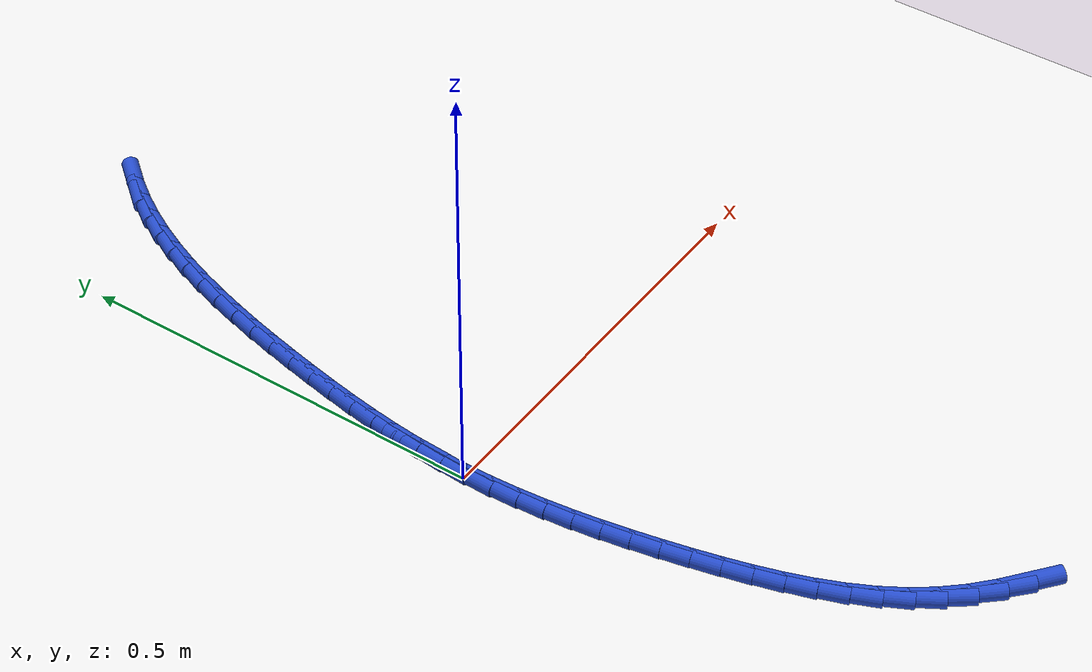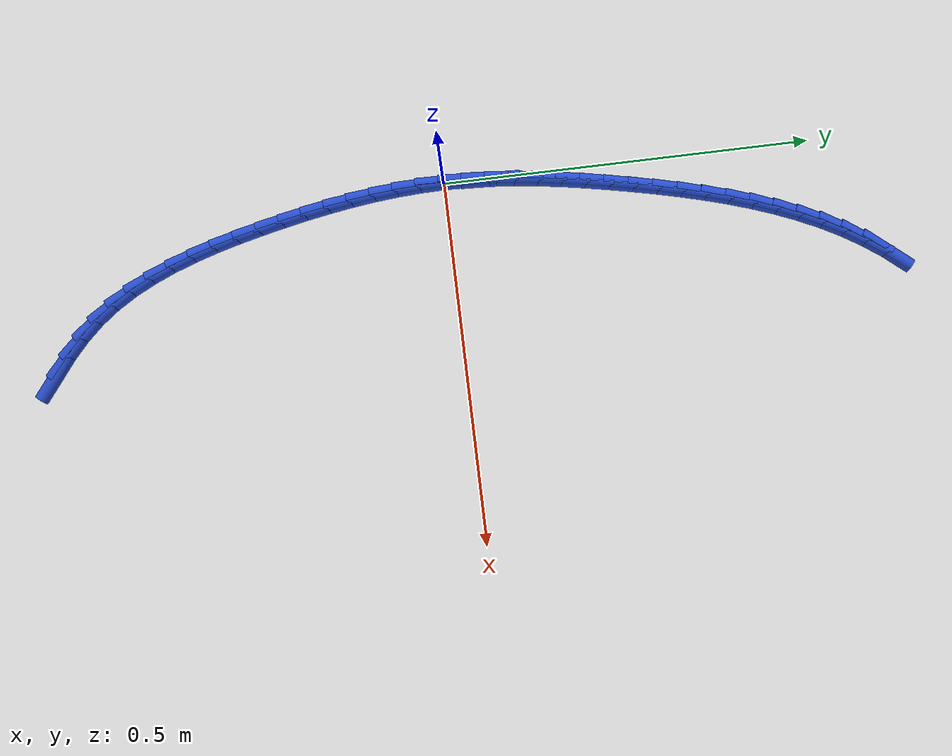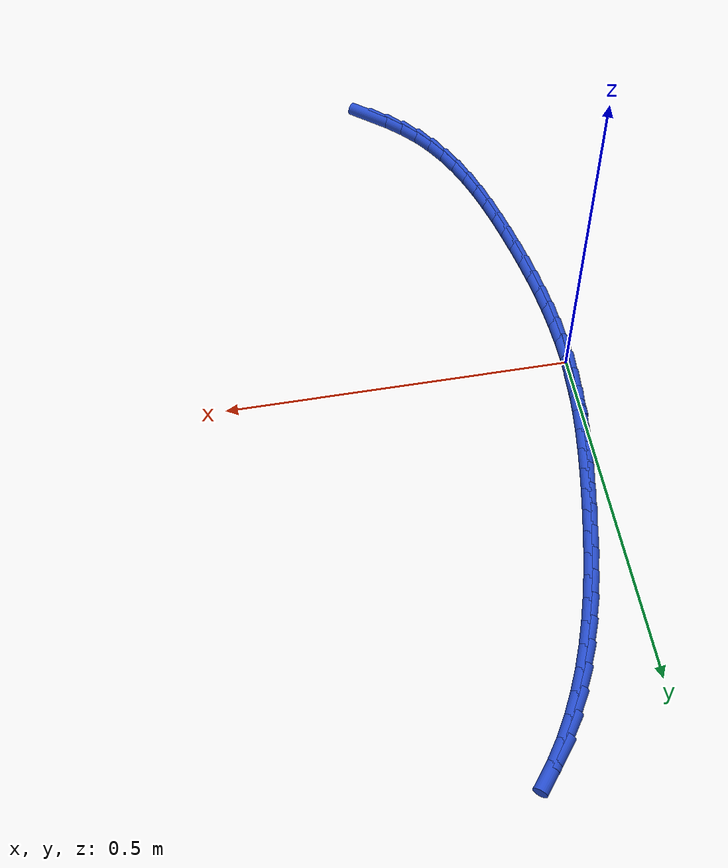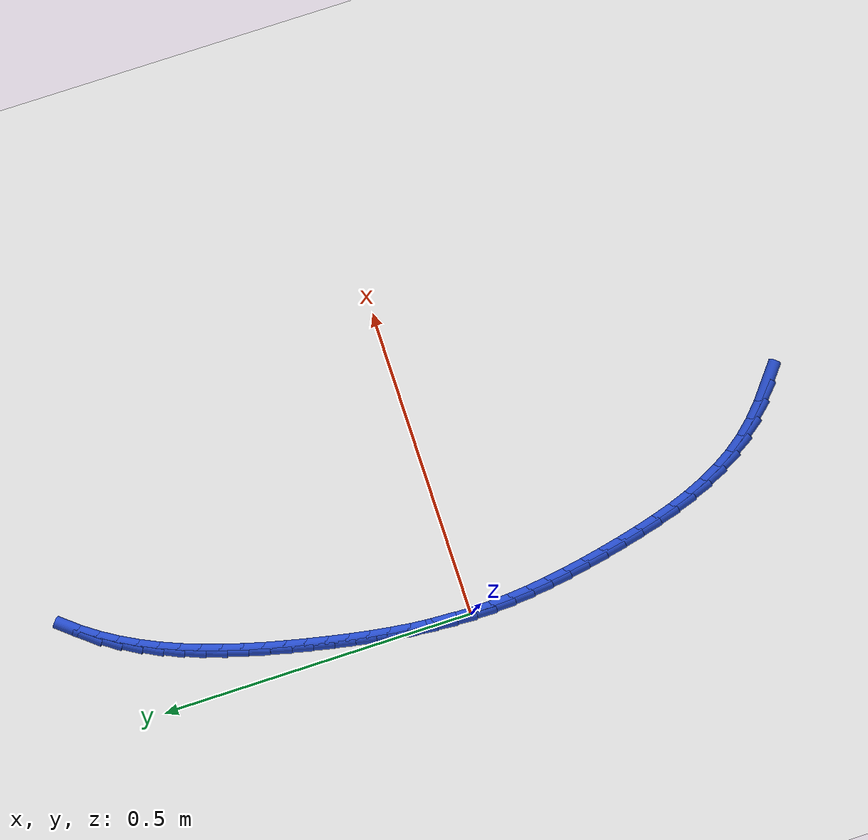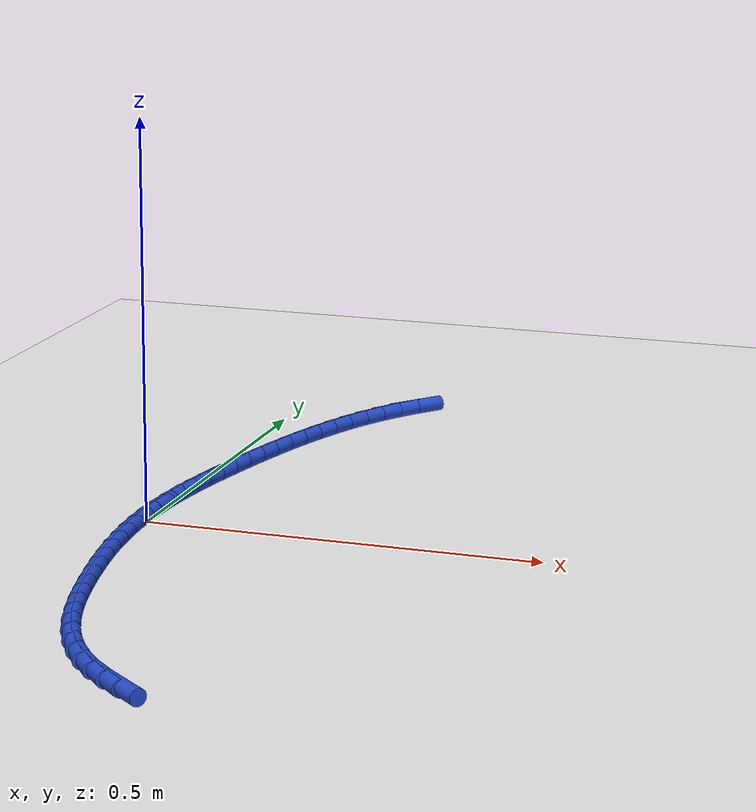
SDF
<sdf version="1.6">
 <world name="default">
  <model name="ground_plane">
   <static>1</static>
   <link name="link">
    <collision name="collision">
     <geometry><plane><normal>0 0 1</normal><size>100 100</size></plane></geometry>
     <surface><friction><ode><mu>100</mu><mu2>50</mu2></ode></friction></surface>
    </collision>
    <visual name="visual">
     <cast_shadows>0</cast_shadows>
     <geometry><plane><normal>0 0 1</normal><size>100 100</size></plane></geometry>
     <material>
      <script><uri>file://media/materials/scripts/gazebo.material</uri><name>Gazebo/WhiteGlow</name></script>
     </material>
    </visual>
   </link>
  </model>
  <model name="line">
   <link name="link_0">
    <pose>5.204170427930421e-18 -2.7755575615628914e-17 0.01 0 1.57 1.5479271069399798</pose>
    <collision name="collision">
     <geometry><cylinder><radius>0.01</radius><length>0.08</length></cylinder></geometry>
    </collision>
    <visual name="visual">
     <material>
      <script><name>Gazebo/Blue</name><uri>file://media/materials/scripts/gazebo.material</uri></script>
     </material>
     <geometry><cylinder><radius>0.01</radius><length>0.08</length></cylinder></geometry>
    </visual>
   </link>
   <link name="link_1">
    <pose>0.0007225194036164939 0.03158802286646798 0.01 0 1.57 1.5106949477596123</pose>
    <collision name="collision">
     <geometry><cylinder><radius>0.01</radius><length>0.08</length></cylinder></geometry>
    </collision>
    <visual name="visual">
     <material>
      <script><name>Gazebo/Blue</name><uri>file://media/materials/scripts/gazebo.material</uri></script>
     </material>
     <geometry><cylinder><radius>0.01</radius><length>0.08</length></cylinder></geometry>
    </visual>
   </link>
   <link name="link_2">
    <pose>0.002623943305665586 0.0631868639454135 0.01 0 1.57 1.4771769836632676</pose>
    <collision name="collision">
     <geometry><cylinder><radius>0.01</radius><length>0.08</length></cylinder></geometry>
    </collision>
    <visual name="visual">
     <material>
      <script><name>Gazebo/Blue</name><uri>file://media/materials/scripts/gazebo.material</uri></script>
     </material>
     <geometry><cylinder><radius>0.01</radius><length>0.08</length></cylinder></geometry>
    </visual>
   </link>
   <link name="link_3">
    <pose>0.005594196453344195 0.09482103588885157 0.01 0 1.57 1.4474587203755238</pose>
    <collision name="collision">
     <geometry><cylinder><radius>0.01</radius><length>0.08</length></cylinder></geometry>
    </collision>
    <visual name="visual">
     <material>
      <script><name>Gazebo/Blue</name><uri>file://media/materials/scripts/gazebo.material</uri></script>
     </material>
     <geometry><cylinder><radius>0.01</radius><length>0.08</length></cylinder></geometry>
    </visual>
   </link>
   <link name="link_4">
    <pose>0.00952320359384925 0.12651505134879745 0.01 0 1.57 1.421570015818683</pose>
    <collision name="collision">
     <geometry><cylinder><radius>0.01</radius><length>0.08</length></cylinder></geometry>
    </collision>
    <visual name="visual">
     <material>
      <script><name>Gazebo/Blue</name><uri>file://media/materials/scripts/gazebo.material</uri></script>
     </material>
     <geometry><cylinder><radius>0.01</radius><length>0.08</length></cylinder></geometry>
    </visual>
   </link>
   <link name="link_5">
    <pose>0.014300889474377656 0.15829342297726606 0.01 0 1.57 1.3994980753813784</pose>
    <collision name="collision">
     <geometry><cylinder><radius>0.01</radius><length>0.08</length></cylinder></geometry>
    </collision>
    <visual name="visual">
     <material>
      <script><name>Gazebo/Blue</name><uri>file://media/materials/scripts/gazebo.material</uri></script>
     </material>
     <geometry><cylinder><radius>0.01</radius><length>0.08</length></cylinder></geometry>
    </visual>
   </link>
   <link name="link_6">
    <pose>0.019817178842126332 0.19018066342627266 0.01 0 1.57 1.381199406289561</pose>
    <collision name="collision">
     <geometry><cylinder><radius>0.01</radius><length>0.08</length></cylinder></geometry>
    </collision>
    <visual name="visual">
     <material>
      <script><name>Gazebo/Blue</name><uri>file://media/materials/scripts/gazebo.material</uri></script>
     </material>
     <geometry><cylinder><radius>0.01</radius><length>0.08</length></cylinder></geometry>
    </visual>
   </link>
   <link name="link_7">
    <pose>0.025961996444292208 0.22220128534783232 0.01 0 1.57 1.3666028297357178</pose>
    <collision name="collision">
     <geometry><cylinder><radius>0.01</radius><length>0.08</length></cylinder></geometry>
    </collision>
    <visual name="visual">
     <material>
      <script><name>Gazebo/Blue</name><uri>file://media/materials/scripts/gazebo.material</uri></script>
     </material>
     <geometry><cylinder><radius>0.01</radius><length>0.08</length></cylinder></geometry>
    </visual>
   </link>
   <link name="link_8">
    <pose>0.03262547887403815 0.2543796495197848 0.01 0 1.57 1.3535168513125615</pose>
    <collision name="collision">
     <geometry><cylinder><radius>0.01</radius><length>0.08</length></cylinder></geometry>
    </collision>
    <visual name="visual">
     <material>
      <script><name>Gazebo/Blue</name><uri>file://media/materials/scripts/gazebo.material</uri></script>
     </material>
     <geometry><cylinder><radius>0.01</radius><length>0.08</length></cylinder></geometry>
    </visual>
   </link>
   <link name="link_9">
    <pose>0.03975971839070129 0.28669570017577833 0.01 0 1.57 1.3368271544211339</pose>
    <collision name="collision">
     <geometry><cylinder><radius>0.01</radius><length>0.08</length></cylinder></geometry>
    </collision>
    <visual name="visual">
     <material>
      <script><name>Gazebo/Blue</name><uri>file://media/materials/scripts/gazebo.material</uri></script>
     </material>
     <geometry><cylinder><radius>0.01</radius><length>0.08</length></cylinder></geometry>
    </visual>
   </link>
   <link name="link_10">
    <pose>0.047464528884889064 0.3190234786552057 0.01 0 1.57 1.3156942760936174</pose>
    <collision name="collision">
     <geometry><cylinder><radius>0.01</radius><length>0.08</length></cylinder></geometry>
    </collision>
    <visual name="visual">
     <material>
      <script><name>Gazebo/Blue</name><uri>file://media/materials/scripts/gazebo.material</uri></script>
     </material>
     <geometry><cylinder><radius>0.01</radius><length>0.08</length></cylinder></geometry>
    </visual>
   </link>
   <link name="link_11">
    <pose>0.055861270674267806 0.35122157948058697 0.01 0 1.57 1.2899494429673124</pose>
    <collision name="collision">
     <geometry><cylinder><radius>0.01</radius><length>0.08</length></cylinder></geometry>
    </collision>
    <visual name="visual">
     <material>
      <script><name>Gazebo/Blue</name><uri>file://media/materials/scripts/gazebo.material</uri></script>
     </material>
     <geometry><cylinder><radius>0.01</radius><length>0.08</length></cylinder></geometry>
    </visual>
   </link>
   <link name="link_12">
    <pose>0.06507130407650391 0.38314859717444216 0.01 0 1.57 1.2593662667407546</pose>
    <collision name="collision">
     <geometry><cylinder><radius>0.01</radius><length>0.08</length></cylinder></geometry>
    </collision>
    <visual name="visual">
     <material>
      <script><name>Gazebo/Blue</name><uri>file://media/materials/scripts/gazebo.material</uri></script>
     </material>
     <geometry><cylinder><radius>0.01</radius><length>0.08</length></cylinder></geometry>
    </visual>
   </link>
   <link name="link_13">
    <pose>0.07521598940926373 0.41466312625929125 0.01 0 1.57 1.2236727436091208</pose>
    <collision name="collision">
     <geometry><cylinder><radius>0.01</radius><length>0.08</length></cylinder></geometry>
    </collision>
    <visual name="visual">
     <material>
      <script><name>Gazebo/Blue</name><uri>file://media/materials/scripts/gazebo.material</uri></script>
     </material>
     <geometry><cylinder><radius>0.01</radius><length>0.08</length></cylinder></geometry>
    </visual>
   </link>
   <link name="link_14">
    <pose>0.08641668699021357 0.4456237612576542 0.01 0 1.57 1.1825682829040605</pose>
    <collision name="collision">
     <geometry><cylinder><radius>0.01</radius><length>0.08</length></cylinder></geometry>
    </collision>
    <visual name="visual">
     <material>
      <script><name>Gazebo/Blue</name><uri>file://media/materials/scripts/gazebo.material</uri></script>
     </material>
     <geometry><cylinder><radius>0.01</radius><length>0.08</length></cylinder></geometry>
    </visual>
   </link>
   <link name="link_15">
    <pose>0.09879475713701985 0.47588909669205104 0.01 0 1.57 1.1357485016548954</pose>
    <collision name="collision">
     <geometry><cylinder><radius>0.01</radius><length>0.08</length></cylinder></geometry>
    </collision>
    <visual name="visual">
     <material>
      <script><name>Gazebo/Blue</name><uri>file://media/materials/scripts/gazebo.material</uri></script>
     </material>
     <geometry><cylinder><radius>0.01</radius><length>0.08</length></cylinder></geometry>
    </visual>
   </link>
   <link name="link_16">
    <pose>0.11247156016734888 0.5053177270850017 0.01 0 1.57 1.0829406344017214</pose>
    <collision name="collision">
     <geometry><cylinder><radius>0.01</radius><length>0.08</length></cylinder></geometry>
    </collision>
    <visual name="visual">
     <material>
      <script><name>Gazebo/Blue</name><uri>file://media/materials/scripts/gazebo.material</uri></script>
     </material>
     <geometry><cylinder><radius>0.01</radius><length>0.08</length></cylinder></geometry>
    </visual>
   </link>
   <link name="link_17">
    <pose>0.12756845639886707 0.5337682469590264 0.01 0 1.57 1.0239517840047918</pose>
    <collision name="collision">
     <geometry><cylinder><radius>0.01</radius><length>0.08</length></cylinder></geometry>
    </collision>
    <visual name="visual">
     <material>
      <script><name>Gazebo/Blue</name><uri>file://media/materials/scripts/gazebo.material</uri></script>
     </material>
     <geometry><cylinder><radius>0.01</radius><length>0.08</length></cylinder></geometry>
    </visual>
   </link>
   <link name="link_18">
    <pose>0.14420680614924075 0.5610992508366448 0.01 0 1.57 0.9587302216881606</pose>
    <collision name="collision">
     <geometry><cylinder><radius>0.01</radius><length>0.08</length></cylinder></geometry>
    </collision>
    <visual name="visual">
     <material>
      <script><name>Gazebo/Blue</name><uri>file://media/materials/scripts/gazebo.material</uri></script>
     </material>
     <geometry><cylinder><radius>0.01</radius><length>0.08</length></cylinder></geometry>
    </visual>
   </link>
   <link name="link_19">
    <pose>0.16250796973613624 0.5871693332403771 0.01 0 1.57 0.8874358720476883</pose>
    <collision name="collision">
     <geometry><cylinder><radius>0.01</radius><length>0.08</length></cylinder></geometry>
    </collision>
    <visual name="visual">
     <material>
      <script><name>Gazebo/Blue</name><uri>file://media/materials/scripts/gazebo.material</uri></script>
     </material>
     <geometry><cylinder><radius>0.01</radius><length>0.08</length></cylinder></geometry>
    </visual>
   </link>
   <link name="link_231">
    <pose>0.19835142039642006 -0.5540729872547265 0.01 0 1.57 -0.6741181508095503</pose>
    <collision name="collision">
     <geometry><cylinder><radius>0.01</radius><length>0.08</length></cylinder></geometry>
    </collision>
    <visual name="visual">
     <material>
      <script><name>Gazebo/Blue</name><uri>file://media/materials/scripts/gazebo.material</uri></script>
     </material>
     <geometry><cylinder><radius>0.01</radius><length>0.08</length></cylinder></geometry>
    </visual>
   </link>
   <link name="link_232">
    <pose>0.17382950100933658 -0.5344804854226813 0.01 0 1.57 -0.7506604338923394</pose>
    <collision name="collision">
     <geometry><cylinder><radius>0.01</radius><length>0.08</length></cylinder></geometry>
    </collision>
    <visual name="visual">
     <material>
      <script><name>Gazebo/Blue</name><uri>file://media/materials/scripts/gazebo.material</uri></script>
     </material>
     <geometry><cylinder><radius>0.01</radius><length>0.08</length></cylinder></geometry>
    </visual>
   </link>
   <link name="link_233">
    <pose>0.15111587440450996 -0.5132925143661575 0.01 0 1.57 -0.8382189698502316</pose>
    <collision name="collision">
     <geometry><cylinder><radius>0.01</radius><length>0.08</length></cylinder></geometry>
    </collision>
    <visual name="visual">
     <material>
      <script><name>Gazebo/Blue</name><uri>file://media/materials/scripts/gazebo.material</uri></script>
     </material>
     <geometry><cylinder><radius>0.01</radius><length>0.08</length></cylinder></geometry>
    </visual>
   </link>
   <link name="link_234">
    <pose>0.13045112902907027 -0.4903207049797418 0.01 0 1.57 -0.9349329709925919</pose>
    <collision name="collision">
     <geometry><cylinder><radius>0.01</radius><length>0.08</length></cylinder></geometry>
    </collision>
    <visual name="visual">
     <material>
      <script><name>Gazebo/Blue</name><uri>file://media/materials/scripts/gazebo.material</uri></script>
     </material>
     <geometry><cylinder><radius>0.01</radius><length>0.08</length></cylinder></geometry>
    </visual>
   </link>
   <link name="link_235">
    <pose>0.11205460172315738 -0.4653976782097044 0.01 0 1.57 -1.0274519976180516</pose>
    <collision name="collision">
     <geometry><cylinder><radius>0.01</radius><length>0.08</length></cylinder></geometry>
    </collision>
    <visual name="visual">
     <material>
      <script><name>Gazebo/Blue</name><uri>file://media/materials/scripts/gazebo.material</uri></script>
     </material>
     <geometry><cylinder><radius>0.01</radius><length>0.08</length></cylinder></geometry>
    </visual>
   </link>
   <link name="link_236">
    <pose>0.09588020957729343 -0.4386182080839647 0.01 0 1.57 -1.107226629692696</pose>
    <collision name="collision">
     <geometry><cylinder><radius>0.01</radius><length>0.08</length></cylinder></geometry>
    </collision>
    <visual name="visual">
     <material>
      <script><name>Gazebo/Blue</name><uri>file://media/materials/scripts/gazebo.material</uri></script>
     </material>
     <geometry><cylinder><radius>0.01</radius><length>0.08</length></cylinder></geometry>
    </visual>
   </link>
   <link name="link_237">
    <pose>0.0817014845336115 -0.41025523367882966 0.01 0 1.57 -1.1745582705902353</pose>
    <collision name="collision">
     <geometry><cylinder><radius>0.01</radius><length>0.08</length></cylinder></geometry>
    </collision>
    <visual name="visual">
     <material>
      <script><name>Gazebo/Blue</name><uri>file://media/materials/scripts/gazebo.material</uri></script>
     </material>
     <geometry><cylinder><radius>0.01</radius><length>0.08</length></cylinder></geometry>
    </visual>
   </link>
   <link name="link_238">
    <pose>0.06928851311975066 -0.3805850970804748 0.01 0 1.57 -1.2303022205895715</pose>
    <collision name="collision">
     <geometry><cylinder><radius>0.01</radius><length>0.08</length></cylinder></geometry>
    </collision>
    <visual name="visual">
     <material>
      <script><name>Gazebo/Blue</name><uri>file://media/materials/scripts/gazebo.material</uri></script>
     </material>
     <geometry><cylinder><radius>0.01</radius><length>0.08</length></cylinder></geometry>
    </visual>
   </link>
   <link name="link_239">
    <pose>0.05841138186334999 -0.3498841403750756 0.01 0 1.57 -1.2754191704049136</pose>
    <collision name="collision">
     <geometry><cylinder><radius>0.01</radius><length>0.08</length></cylinder></geometry>
    </collision>
    <visual name="visual">
     <material>
      <script><name>Gazebo/Blue</name><uri>file://media/materials/scripts/gazebo.material</uri></script>
     </material>
     <geometry><cylinder><radius>0.01</radius><length>0.08</length></cylinder></geometry>
    </visual>
   </link>
   <link name="link_240">
    <pose>0.04884017729204879 -0.3184287056488082 0.01 0 1.57 -1.310791248091675</pose>
    <collision name="collision">
     <geometry><cylinder><radius>0.01</radius><length>0.08</length></cylinder></geometry>
    </collision>
    <visual name="visual">
     <material>
      <script><name>Gazebo/Blue</name><uri>file://media/materials/scripts/gazebo.material</uri></script>
     </material>
     <geometry><cylinder><radius>0.01</radius><length>0.08</length></cylinder></geometry>
    </visual>
   </link>
   <link name="link_241">
    <pose>0.04034498593348567 -0.2864951349878464 0.01 0 1.57 -1.3371175118362013</pose>
    <collision name="collision">
     <geometry><cylinder><radius>0.01</radius><length>0.08</length></cylinder></geometry>
    </collision>
    <visual name="visual">
     <material>
      <script><name>Gazebo/Blue</name><uri>file://media/materials/scripts/gazebo.material</uri></script>
     </material>
     <geometry><cylinder><radius>0.01</radius><length>0.08</length></cylinder></geometry>
    </visual>
   </link>
   <link name="link_242">
    <pose>0.03269589431529994 -0.2543597704783663 0.01 0 1.57 -1.355920632460578</pose>
    <collision name="collision">
     <geometry><cylinder><radius>0.01</radius><length>0.08</length></cylinder></geometry>
    </collision>
    <visual name="visual">
     <material>
      <script><name>Gazebo/Blue</name><uri>file://media/materials/scripts/gazebo.material</uri></script>
     </material>
     <geometry><cylinder><radius>0.01</radius><length>0.08</length></cylinder></geometry>
    </visual>
   </link>
   <link name="link_243">
    <pose>0.02569288251595566 -0.22227192269045104 0.01 0 1.57 -1.3747021534676922</pose>
    <collision name="collision">
     <geometry><cylinder><radius>0.01</radius><length>0.08</length></cylinder></geometry>
    </collision>
    <visual name="visual">
     <material>
      <script><name>Gazebo/Blue</name><uri>file://media/materials/scripts/gazebo.material</uri></script>
     </material>
     <geometry><cylinder><radius>0.01</radius><length>0.08</length></cylinder></geometry>
    </visual>
   </link>
   <link name="link_244">
    <pose>0.019340879865142737 -0.19029557496373634 0.01 0 1.57 -1.3965965275699126</pose>
    <collision name="collision">
     <geometry><cylinder><radius>0.01</radius><length>0.08</length></cylinder></geometry>
    </collision>
    <visual name="visual">
     <material>
      <script><name>Gazebo/Blue</name><uri>file://media/materials/scripts/gazebo.material</uri></script>
     </material>
     <geometry><cylinder><radius>0.01</radius><length>0.08</length></cylinder></geometry>
    </visual>
   </link>
   <link name="link_245">
    <pose>0.013730773092848049 -0.1584169828743347 0.01 0 1.57 -1.4216663633715412</pose>
    <collision name="collision">
     <geometry><cylinder><radius>0.01</radius><length>0.08</length></cylinder></geometry>
    </collision>
    <visual name="visual">
     <material>
      <script><name>Gazebo/Blue</name><uri>file://media/materials/scripts/gazebo.material</uri></script>
     </material>
     <geometry><cylinder><radius>0.01</radius><length>0.08</length></cylinder></geometry>
    </visual>
   </link>
   <link name="link_246">
    <pose>0.008953742844524507 -0.12662213622261698 0.01 0 1.57 -1.4499457383988037</pose>
    <collision name="collision">
     <geometry><cylinder><radius>0.01</radius><length>0.08</length></cylinder></geometry>
    </collision>
    <visual name="visual">
     <material>
      <script><name>Gazebo/Blue</name><uri>file://media/materials/scripts/gazebo.material</uri></script>
     </material>
     <geometry><cylinder><radius>0.01</radius><length>0.08</length></cylinder></geometry>
    </visual>
   </link>
   <link name="link_247">
    <pose>0.005100969765625025 -0.0948970248089539 0.01 0 1.57 -1.48144252571486</pose>
    <collision name="collision">
     <geometry><cylinder><radius>0.01</radius><length>0.08</length></cylinder></geometry>
    </collision>
    <visual name="visual">
     <material>
      <script><name>Gazebo/Blue</name><uri>file://media/materials/scripts/gazebo.material</uri></script>
     </material>
     <geometry><cylinder><radius>0.01</radius><length>0.08</length></cylinder></geometry>
    </visual>
   </link>
   <link name="link_248">
    <pose>0.0022636345016025044 -0.06322763843371619 0.01 0 1.57 -1.5161292488902667</pose>
    <collision name="collision">
     <geometry><cylinder><radius>0.01</radius><length>0.08</length></cylinder></geometry>
    </collision>
    <visual name="visual">
     <material>
      <script><name>Gazebo/Blue</name><uri>file://media/materials/scripts/gazebo.material</uri></script>
     </material>
     <geometry><cylinder><radius>0.01</radius><length>0.08</length></cylinder></geometry>
    </visual>
   </link>
   <link name="link_249">
    <pose>0.0005329176979098614 -0.03159996689727466 0.01 0 1.57 -1.5539334235635276</pose>
    <collision name="collision">
     <geometry><cylinder><radius>0.01</radius><length>0.08</length></cylinder></geometry>
    </collision>
    <visual name="visual">
     <material>
      <script><name>Gazebo/Blue</name><uri>file://media/materials/scripts/gazebo.material</uri></script>
     </material>
     <geometry><cylinder><radius>0.01</radius><length>0.08</length></cylinder></geometry>
    </visual>
   </link>
   <link name="link_250">
    <pose>-6.938893903907228e-18 2.7755575615628914e-17 0.01 0 1.57 1.5468644839907846</pose>
    <collision name="collision">
     <geometry><cylinder><radius>0.01</radius><length>0.08</length></cylinder></geometry>
    </collision>
    <visual name="visual">
     <material>
      <script><name>Gazebo/Blue</name><uri>file://media/materials/scripts/gazebo.material</uri></script>
     </material>
     <geometry><cylinder><radius>0.01</radius><length>0.08</length></cylinder></geometry>
    </visual>
   </link>
   <link name="link_251">
    <pose>0.0007560620533258152 0.03158627245773707 0.01 0 1.57 1.503268476615905</pose>
    <collision name="collision">
     <geometry><cylinder><radius>0.01</radius><length>0.08</length></cylinder></geometry>
    </collision>
    <visual name="visual">
     <material>
      <script><name>Gazebo/Blue</name><uri>file://media/materials/scripts/gazebo.material</uri></script>
     </material>
     <geometry><cylinder><radius>0.01</radius><length>0.08</length></cylinder></geometry>
    </visual>
   </link>
   <link name="link_252">
    <pose>0.0028922845033402325 0.06317286067556577 0.01 0 1.57 1.5250446206112303</pose>
    <collision name="collision">
     <geometry><cylinder><radius>0.01</radius><length>0.08</length></cylinder></geometry>
    </collision>
    <visual name="visual">
     <material>
      <script><name>Gazebo/Blue</name><uri>file://media/materials/scripts/gazebo.material</uri></script>
     </material>
     <geometry><cylinder><radius>0.01</radius><length>0.08</length></cylinder></geometry>
    </visual>
   </link>
  </model>
 </world>
</sdf>
